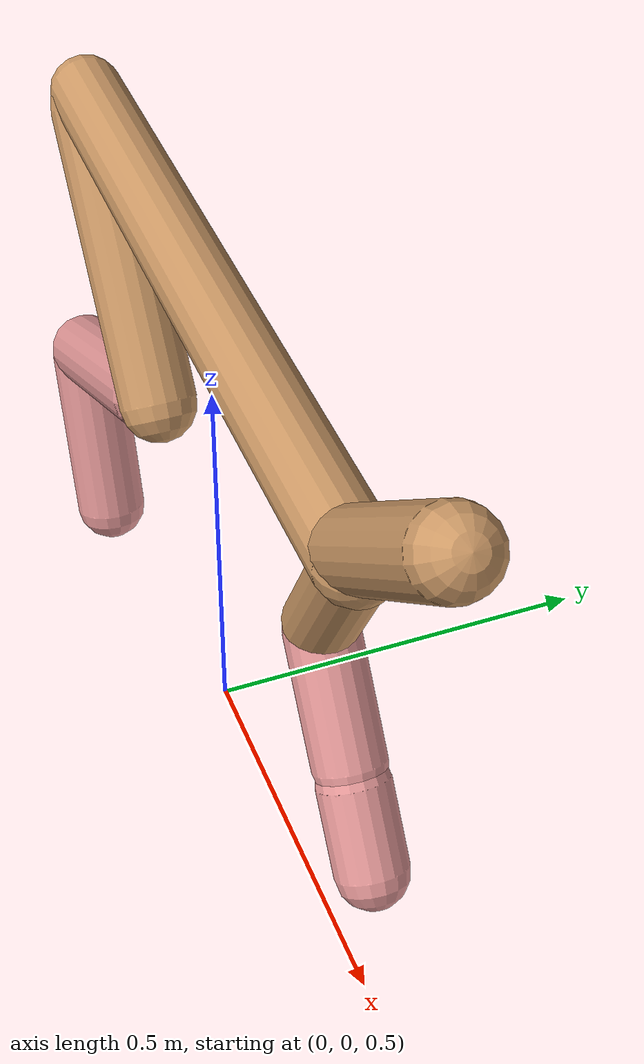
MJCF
<mujoco model="cheetah">
  <compiler angle="radian" coordinate="local" inertiafromgeom="true" settotalmass="14" />
  <default>
    <joint armature=".1" damping=".01" limited="true" solimplimit="0 .8 .03" solreflimit=".02 1" stiffness="8" />
    <geom conaffinity="0" condim="3" contype="1" friction="0.8 .1 .1" rgba="0.8 0.6 .4 1" solimp="0.0 0.8 0.01" solref="0.02 1" />
    <motor ctrllimited="true" ctrlrange="-1 1" />
  </default>
  <size nstack="300000" nuser_geom="1" />
  <option gravity="0 0 -9.81" timestep="0.01" />
  <worldbody>
    <body name="torso" pos="0.0 0.0 1.1340099557125094">
      <joint armature="0" axis="1 0 0" damping="0" limited="false" name="ignorex" pos="0 0 0" stiffness="0" type="slide" />
      <joint armature="0" axis="0 0 1" damping="0" limited="false" name="ignorez" pos="0 0 0" stiffness="0" type="slide" />
      <joint armature="0" axis="0 1 0" damping="0" limited="false" name="ignorey" pos="0 0 0" stiffness="0" type="hinge" />
      <geom fromto="-0.5 0.0 0.0 0.45929670132764433 0.0 0.0" name="torso" size="0.04725597583587714" type="capsule" />
      <geom axisangle="0 1 0 .87" name="head" pos="0.5592967013276443 0.0 0.1" size="0.04574689915566235 0.15" type="capsule" />

      <body name="bthigh" pos="-.5 0 0">
        <joint axis="0 1 0" damping="6" name="bthigh" pos="0 0 0" range="-.52 1.05" stiffness="240" type="hinge" />
        <geom axisangle="0 1 0 -3.8" name="bthigh" pos="0.1325169308012739 0.0 -0.1722720100416561" size="0.051950517615853016 0.1983317318460287" type="capsule" />
        <body name="bshin" pos="0.22503386160254785 0.0 -0.3345440200833122">
          <joint axis="0 1 0" damping="4.5" name="bshin" pos="0 0 0" range="-.785 .785" stiffness="180" type="hinge" />
          <geom axisangle="0 1 0 -2.03" name="bshin" pos="-0.18934622528228023 0.0 -0.09467311264114012" rgba="0.9 0.6 0.6 1" size="0.051950517615853016 0.20517075708209867" type="capsule" />
          <body name="bfoot" pos="-0.37869245056456047 0.0 -0.18934622528228023">
            <joint axis="0 1 0" damping="3" name="bfoot" pos="0 0 0" range="-.4 .785" stiffness="120" type="hinge" />
            <geom axisangle="0 1 0 -.27" name="bfoot" pos="0.04021547400662766 0.0 -0.13003003262142943" rgba="0.9 0.6 0.6 1" size="0.051950517615853016 0.12857367443811515" type="capsule" />
            <inertial mass="10" />
          </body>
        </body>
      </body>
      <body name="fthigh" pos="0.45929670132764433 0.0 0.0">
        <joint axis="0 1 0" damping="4.5" name="fthigh" pos="0 0 0" range="-1.5 0.8" stiffness="180" type="hinge" />
        <geom axisangle="0 1 0 .52" name="fthigh" pos="-0.051868883552509126 0.0 -0.08891808609001564" size="0.04212793157900993 0.09701635432672014" type="capsule" />
        <body name="fshin" pos="-0.10373776710501825 0.0 -0.17783617218003128">
          <joint axis="0 1 0" damping="3" name="fshin" pos="0 0 0" range="-1.2 1.1" stiffness="120" type="hinge" />
          <geom axisangle="0 1 0 -.6" name="fshin" pos="0.048208894952884926 0.0 -0.06675077762707143" rgba="0.9 0.6 0.6 1" size="0.04212793157900993 0.0773213049521228" type="capsule" />
          <body name="ffoot" pos="0.09641778990576985 0.0 -0.13350155525414287">
            <joint axis="0 1 0" damping="1.5" name="ffoot" pos="0 0 0" range="-3.1 -0.3" stiffness="60" type="hinge" />
            <geom axisangle="0 1 0 -.6" name="ffoot" pos="0.03475872128370462 0.0 -0.05406912199687386" rgba="0.9 0.6 0.6 1" size="0.04212793157900993 0.05106123911932639" type="capsule" />
            <inertial mass="10" />
          </body>
        </body>
      </body>
    </body>
  </worldbody>
  <actuator>
    <motor gear="120" joint="bthigh" name="bthigh" />
    <motor gear="90" joint="bshin" name="bshin" />
    <motor gear="60" joint="bfoot" name="bfoot" />
    <motor gear="120" joint="fthigh" name="fthigh" />
    <motor gear="60" joint="fshin" name="fshin" />
    <motor gear="30" joint="ffoot" name="ffoot" />
  </actuator>
</mujoco>
